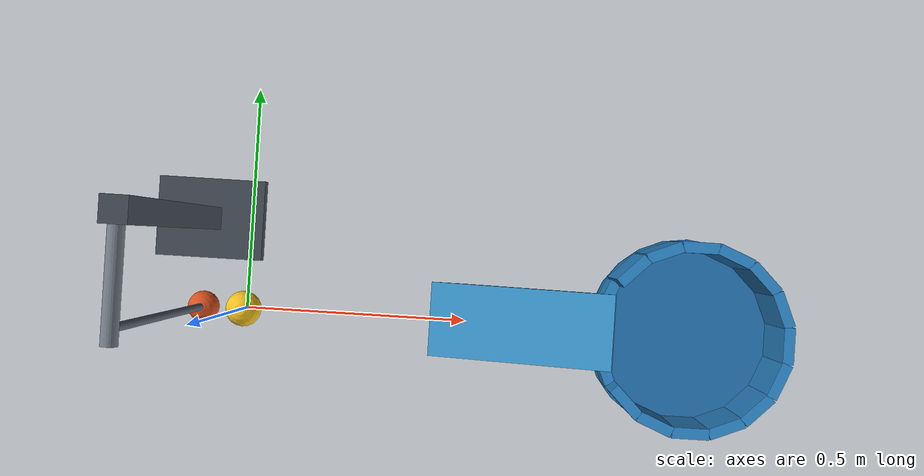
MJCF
<mujoco model="pendulum_ball_and_cup">
  <compiler angle="radian" autolimits="true"/>
  <option timestep="0.002" gravity="0 0 -9.81" integrator="implicitfast" solver="Newton" iterations="80" cone="elliptic"/>
  <size njmax="2000" nconmax="400"/>
  <statistic center="0.45 0 0.3" extent="1.4"/>

  <visual>
    <global azimuth="125" elevation="-25"/>
    <headlight ambient="0.35 0.35 0.35" diffuse="0.7 0.7 0.7" specular="0.2 0.2 0.2"/>
  </visual>

  <worldbody>
    <light name="overhead" pos="0.4 -1 3" dir="0 0.2 -1"/>
    <camera name="overview" pos="1.4 -2.2 1.4" xyaxes="0.918 0.396 0 -0.165 0.383 0.909"/>

    <geom name="floor" type="plane" size="3 2 0.1" rgba="0.78 0.80 0.82 1" condim="6" friction="0.65 0.002 0.0001" solref="0.006 1" solimp="0.95 0.99 0.001"/>

    <body name="stand" pos="-0.09 0.2 0">
      <geom name="stand_post" type="box" pos="0 0 0.33" size="0.025 0.025 0.33" rgba="0.25 0.28 0.32 1"/>
      <geom name="stand_foot" type="box" pos="0 0 0.015" size="0.12 0.09 0.015" rgba="0.25 0.28 0.32 1"/>
      <geom name="stand_axle" type="cylinder" fromto="0 -0.23 0.64 0 0.025 0.64" size="0.015" rgba="0.45 0.48 0.52 1"/>
    </body>

    <!-- Gravity releases the raised pendulum toward the ball. -->
    <body name="pendulum" pos="-0.09 0 0.64">
      <joint name="pendulum_hinge" type="hinge" axis="0 1 0" damping="0.002"/>
      <geom name="pendulum_rod" type="capsule" fromto="0 0 -0.015 0 0 -0.565" size="0.008" mass="0.02" contype="0" conaffinity="0" rgba="0.35 0.38 0.42 1"/>
      <geom name="pendulum_bob" type="sphere" pos="0 0 -0.6" size="0.035" mass="0.35" rgba="0.85 0.32 0.12 1" condim="3" friction="0.25 0.001 0.0001" solref="0.006 1" solimp="0.95 0.99 0.001"/>
    </body>

    <body name="ball" pos="0 0 0.04">
      <freejoint name="ball_free"/>
      <geom name="ball" type="sphere" size="0.04" mass="0.045" rgba="0.95 0.76 0.12 1" condim="6" friction="0.65 0.002 0.0001" solref="0.006 1" solimp="0.95 0.99 0.001"/>
    </body>

    <!-- The cup origin is exactly 1 m from the initial ball centre.
         An integral ramp crosses its low front lip; taller sides retain the ball. -->
    <body name="cup" pos="1 0 0.04">
      <geom name="cup_base" type="cylinder" pos="0 0 -0.036" size="0.218 0.004" rgba="0.12 0.42 0.65 1" condim="6" friction="0.8 0.01 0.002" solref="0.006 1" solimp="0.95 0.99 0.001"/>

      <geom name="cup_wall_00" type="box" pos="0.2 0 0.043" size="0.012 0.04 0.075" euler="0 0 0" rgba="0.16 0.50 0.75 1" friction="0.65 0.005 0.0002" solref="0.006 1"/>
      <geom name="cup_wall_01" type="box" pos="0.184776 0.076537 0.043" size="0.012 0.04 0.075" euler="0 0 0.392699" rgba="0.16 0.50 0.75 1" friction="0.65 0.005 0.0002" solref="0.006 1"/>
      <geom name="cup_wall_02" type="box" pos="0.141421 0.141421 0.043" size="0.012 0.04 0.075" euler="0 0 0.785398" rgba="0.16 0.50 0.75 1" friction="0.65 0.005 0.0002" solref="0.006 1"/>
      <geom name="cup_wall_03" type="box" pos="0.076537 0.184776 0.043" size="0.012 0.04 0.075" euler="0 0 1.178097" rgba="0.16 0.50 0.75 1" friction="0.65 0.005 0.0002" solref="0.006 1"/>
      <geom name="cup_wall_04" type="box" pos="0 0.2 0.043" size="0.012 0.04 0.075" euler="0 0 1.570796" rgba="0.16 0.50 0.75 1" friction="0.65 0.005 0.0002" solref="0.006 1"/>
      <geom name="cup_wall_05" type="box" pos="-0.076537 0.184776 0.043" size="0.012 0.04 0.075" euler="0 0 1.963495" rgba="0.16 0.50 0.75 1" friction="0.65 0.005 0.0002" solref="0.006 1"/>
      <geom name="cup_wall_06" type="box" pos="-0.141421 0.141421 0.043" size="0.012 0.04 0.075" euler="0 0 2.356194" rgba="0.16 0.50 0.75 1" friction="0.65 0.005 0.0002" solref="0.006 1"/>

      <geom name="cup_wall_07" type="box" pos="-0.184776 0.076537 0.008" size="0.012 0.04 0.04" euler="0 0 2.748894" rgba="0.16 0.50 0.75 1" friction="0.65 0.005 0.0002" solref="0.006 1"/>
      <geom name="cup_wall_08" type="box" pos="-0.2 0 0.008" size="0.012 0.04 0.04" euler="0 0 3.141593" rgba="0.16 0.50 0.75 1" friction="0.65 0.005 0.0002" solref="0.006 1"/>
      <geom name="cup_wall_09" type="box" pos="-0.184776 -0.076537 0.008" size="0.012 0.04 0.04" euler="0 0 3.534292" rgba="0.16 0.50 0.75 1" friction="0.65 0.005 0.0002" solref="0.006 1"/>

      <geom name="cup_wall_10" type="box" pos="-0.141421 -0.141421 0.043" size="0.012 0.04 0.075" euler="0 0 3.926991" rgba="0.16 0.50 0.75 1" friction="0.65 0.005 0.0002" solref="0.006 1"/>
      <geom name="cup_wall_11" type="box" pos="-0.076537 -0.184776 0.043" size="0.012 0.04 0.075" euler="0 0 4.319690" rgba="0.16 0.50 0.75 1" friction="0.65 0.005 0.0002" solref="0.006 1"/>
      <geom name="cup_wall_12" type="box" pos="0 -0.2 0.043" size="0.012 0.04 0.075" euler="0 0 4.712389" rgba="0.16 0.50 0.75 1" friction="0.65 0.005 0.0002" solref="0.006 1"/>
      <geom name="cup_wall_13" type="box" pos="0.076537 -0.184776 0.043" size="0.012 0.04 0.075" euler="0 0 5.105088" rgba="0.16 0.50 0.75 1" friction="0.65 0.005 0.0002" solref="0.006 1"/>
      <geom name="cup_wall_14" type="box" pos="0.141421 -0.141421 0.043" size="0.012 0.04 0.075" euler="0 0 5.497787" rgba="0.16 0.50 0.75 1" friction="0.65 0.005 0.0002" solref="0.006 1"/>
      <geom name="cup_wall_15" type="box" pos="0.184776 -0.076537 0.043" size="0.012 0.04 0.075" euler="0 0 5.890486" rgba="0.16 0.50 0.75 1" friction="0.65 0.005 0.0002" solref="0.006 1"/>

      <!-- Ramp top runs from world (0.42, 0, 0) to (0.83, 0, 0.10). -->
      <geom name="cup_entry_ramp" type="box" pos="-0.372630 0 0.000285" size="0.211010 0.085 0.01" euler="0 -0.239232 0" rgba="0.22 0.57 0.78 1" condim="6" friction="0.65 0.002 0.0001" solref="0.006 1" solimp="0.95 0.99 0.001"/>
    </body>
  </worldbody>

  <keyframe>
    <key name="start" qpos="0.95 0 0 0.04 1 0 0 0" qvel="0 0 0 0 0 0 0"/>
  </keyframe>
</mujoco>
